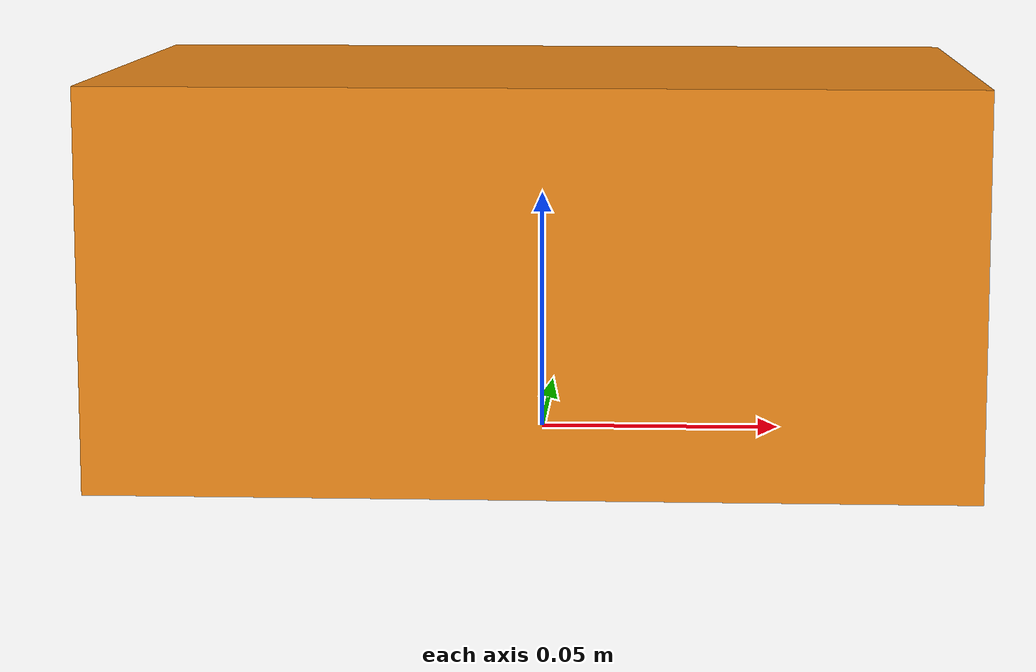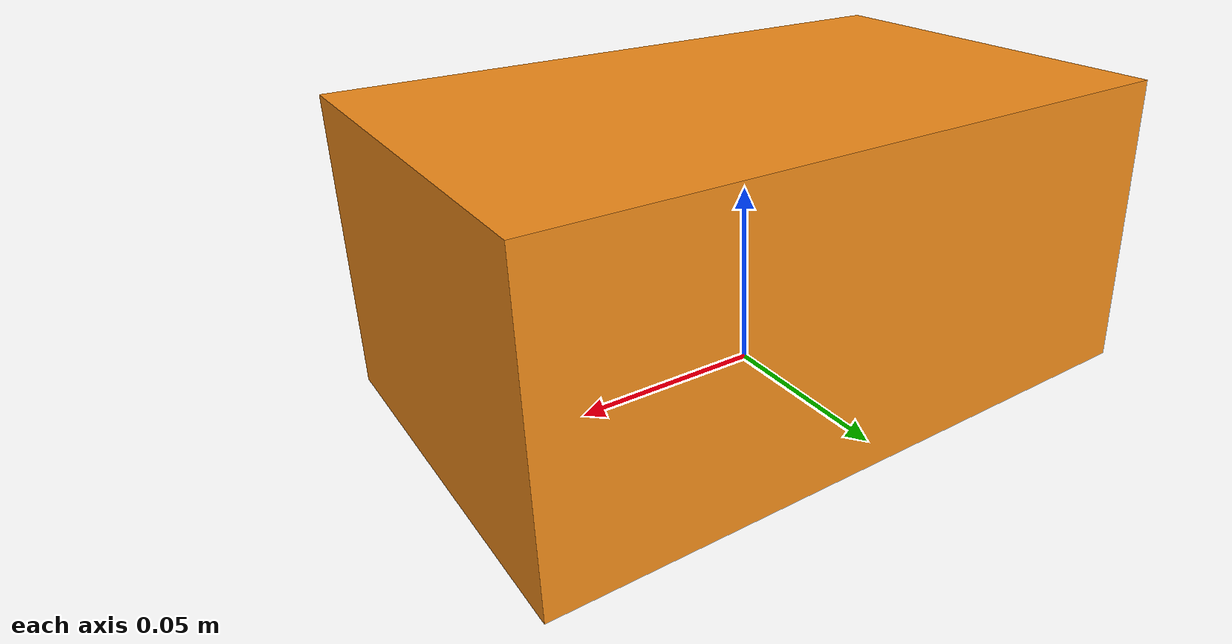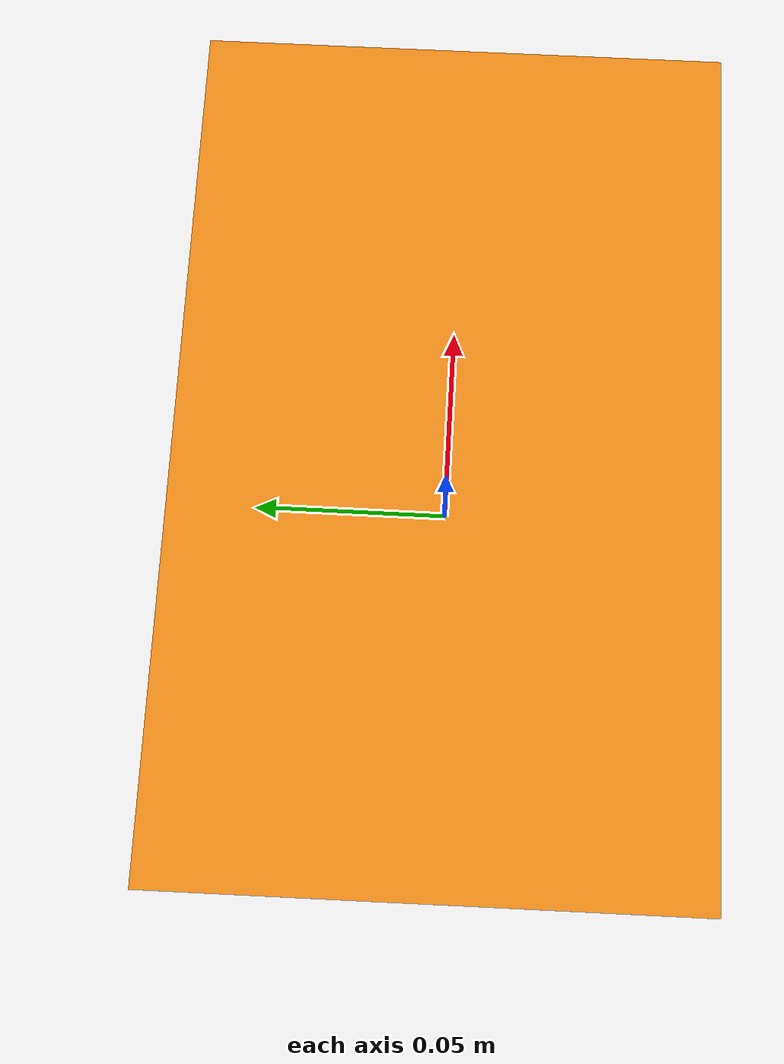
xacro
<?xml version="1.0"?>

<!--
	http://www.generationrobots.com/blog/en/2015/02/robotic-simulation-scenarios-with-gazebo-and-ros/#create your own robot model

	http://gazebosim.org/tutorials?cat=guided_b&tut=guided_b3
-->

<robot name="my_robot" xmlns:xacro="http://www.ros.org/wiki/xacro">

	<xacro:property name="PI" value="3.1415926535897931"/>

	<xacro:property name="chassisHeight" value="0.08"/>
	<xacro:property name="chassisLength" value="0.175"/>
	<xacro:property name="chassisWidth" value="0.11"/>
	<xacro:property name="chassisMass" value="0.5"/>

	<xacro:property name="wheelWidth" value="0.026"/>
	<xacro:property name="wheelRadius" value="0.037"/>
	<xacro:property name="wheelPos" value="0.11"/>
	<xacro:property name="wheelMass" value="0.01"/>

	<xacro:include filename="$(find my_robot_description)/urdf/old/my_robot.gazebo" />
	<xacro:include filename="$(find my_robot_description)/urdf/old/materials.xacro" />
	<xacro:include filename="$(find my_robot_description)/urdf/old/macros.xacro" />

	<link name='chassis'>
		<collision>
			<origin xyz="0 0 ${wheelRadius}" rpy="0 0 0"/>
			<geometry>
				<box size="${chassisLength} ${chassisWidth} ${chassisHeight}"/>
			</geometry>
		</collision>
		<visual>
			<origin xyz="0 0 ${wheelRadius}" rpy="0 0 0"/>
			<geometry>
				<box size="${chassisLength} ${chassisWidth} ${chassisHeight}"/>
			</geometry>
			<material name="orange"/>
		</visual>
		<inertial>
			<origin xyz="0 0 ${wheelRadius}" rpy="0 0 0"/>
			<mass value="${chassisMass}"/>
			<box_inertia m="${chassisMass}" x="${chassisLength}" y="${chassisWidth}" z="${chassisHeight}"/>
		</inertial>
	</link>

	<link name="footprint" />

		<joint name="base_joint" type="fixed">
		<parent link="footprint"/>
		<child link="chassis"/>
	</joint>

</robot>

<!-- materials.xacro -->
<!--
	definition of the materials used (mostly colors)
-->

<material name="black">
  <color rgba="0.0 0.0 0.0 1.0"/>
</material>

<material name="blue">
  <color rgba="0.0 0.0 0.8 1.0"/>
</material>

<material name="green">
  <color rgba="0.0 0.8 0.0 1.0"/>
</material>

<material name="grey">
  <color rgba="0.2 0.2 0.2 1.0"/>
</material>

<material name="orange">
  <color rgba="${255/255} ${108/255} ${10/255} 1.0"/>
</material>

<material name="brown">
  <color rgba="${222/255} ${207/255} ${195/255} 1.0"/>
</material>

<material name="red">
  <color rgba="0.8 0.0 0.0 1.0"/>
</material>

<material name="white">
  <color rgba="1.0 1.0 1.0 1.0"/>
</material>
